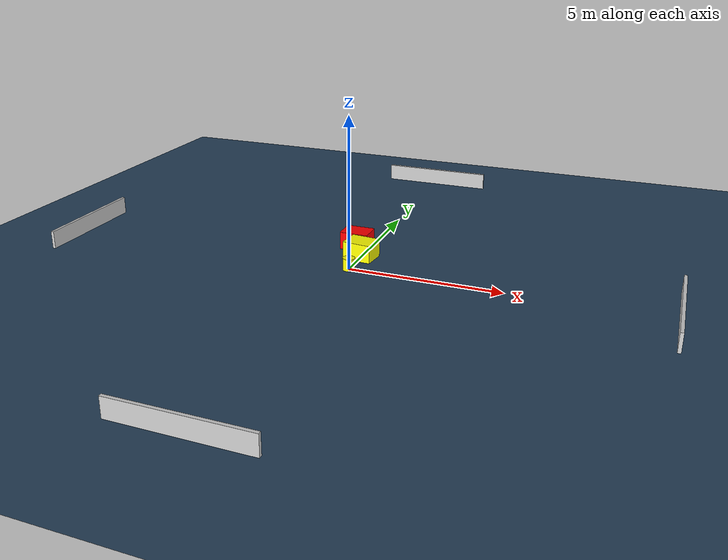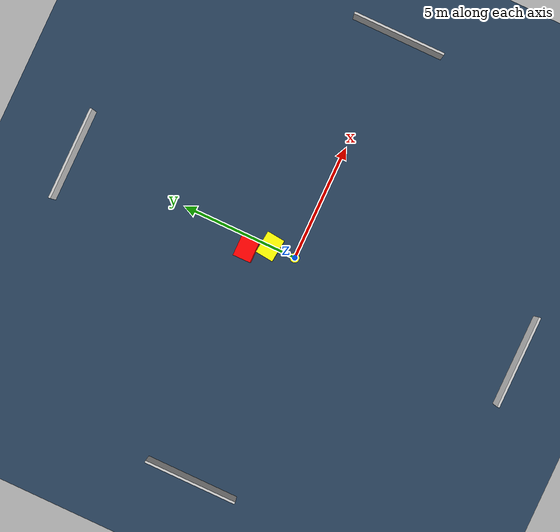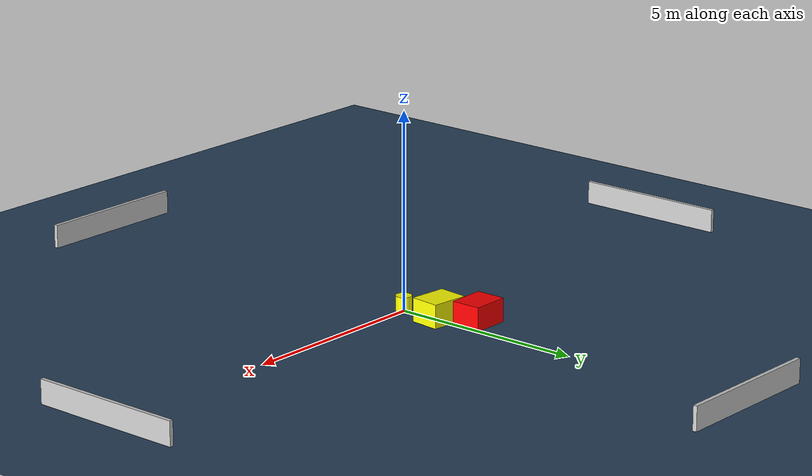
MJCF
<?xml version="1.0" ?>
<mujoco model="generated_environment">
  <option timestep="0.01" integrator="RK4" cone="elliptic"/>
  <default>
    <geom density="1"/>
  </default>
  <asset>
    <texture builtin="gradient" height="3072" name="skybox" rgb1="0.3 0.5 0.7" rgb2="0 0 0" type="skybox" width="512"/>
    <texture builtin="checker" height="300" name="groundplane" rgb1="0.2 0.3 0.4" rgb2="0.1 0.2 0.3" type="2d" width="300"/>
    <material name="groundplane" reflectance="0.2" texrepeat="5 5" texture="groundplane"/>
  </asset>
  <worldbody>
    <light dir="0 0 -1" directional="true" pos="0 0 1.5"/>
    <geom condim="3" friction="0.5 0.005 0.001" material="groundplane" name="floor" pos="0 0 0" size="0 0 0.05" type="plane"/>
    <body name="walls">
      <geom name="wall_1" condim="4" pos="-10.0 0.0 0.3" rgba="0.800000011920929 0.800000011920929 0.800000011920929 1.0" size="0.05 2.0 0.3" type="box"/>
      <geom name="wall_2" condim="4" pos="10.0 0.0 0.3" rgba="0.800000011920929 0.800000011920929 0.800000011920929 1.0" size="0.05 2.0 0.3" type="box"/>
      <geom name="wall_3" condim="4" pos="0.0 -10.0 0.3" rgba="0.800000011920929 0.800000011920929 0.800000011920929 1.0" size="2.0 0.05 0.3" type="box"/>
      <geom name="wall_4" condim="4" pos="0.0 10.0 0.3" rgba="0.800000011920929 0.800000011920929 0.800000011920929 1.0" size="2.0 0.05 0.3" type="box"/>
    </body>
    <body name="robot">
      <joint name="joint_x" type="slide" pos="0 0 0" axis="1 0 0"/>
      <joint name="joint_y" type="slide" pos="0 0 0" axis="0 1 0"/>
      <geom name="robot" type="cylinder" pos="0.0 0.0 0.2" size="0.2 0.2 0.0" mass="5.0" friction="1.0 0.005 0.0001" condim="4" rgba="1.0 1.0 0.0 1.0"/>
    </body>
    <body name="obstacle_1_movable">
      <geom name="obstacle_1_movable" condim="4" pos="-0.00030676816437985593 1.0963477826426629 0.3" euler="0 0 174.13294662981423" friction="0.0 0.005 0.001" rgba="1.0 1.0 0.0 1.0" size="0.48531909088404473 0.38419924783597453 0.3" type="box" mass="0.1"/>
      <joint type="free"/>
    </body>
    <body name="obstacle_2_static">
      <geom name="obstacle_2_static" condim="4" pos="-0.46168394595446843 1.9368715619122343 0.3" euler="0 0 270.46894497697104" friction="0.0 0.005 0.001" rgba="1.0 0.0 0.0 1.0" size="0.38055803271393696 0.4830909201947117 0.3" type="box"/>
    </body>
  </worldbody>
  <actuator>
    <motor name="actuator_x" joint="joint_x" gear="1" ctrlrange="-1 1"/>
    <motor name="actuator_y" joint="joint_y" gear="1" ctrlrange="-1 1"/>
  </actuator>
</mujoco>
